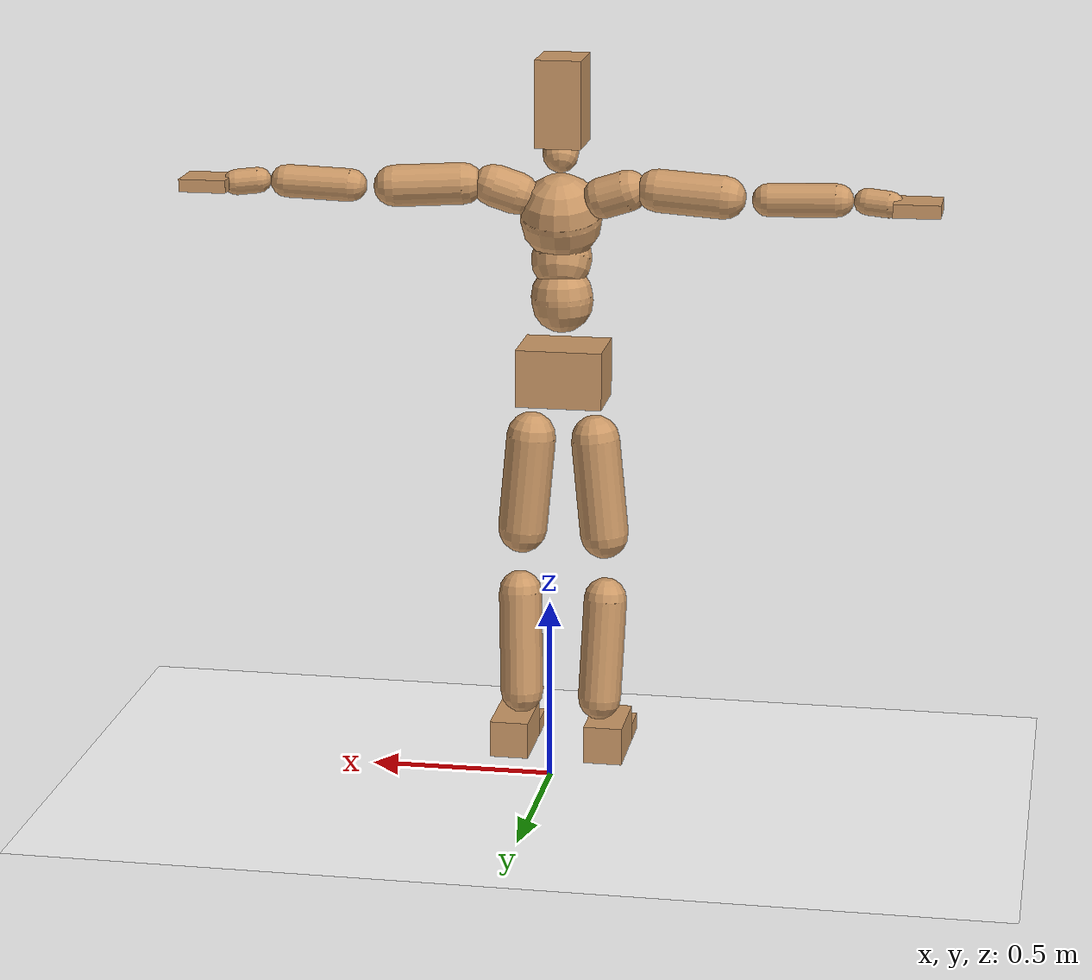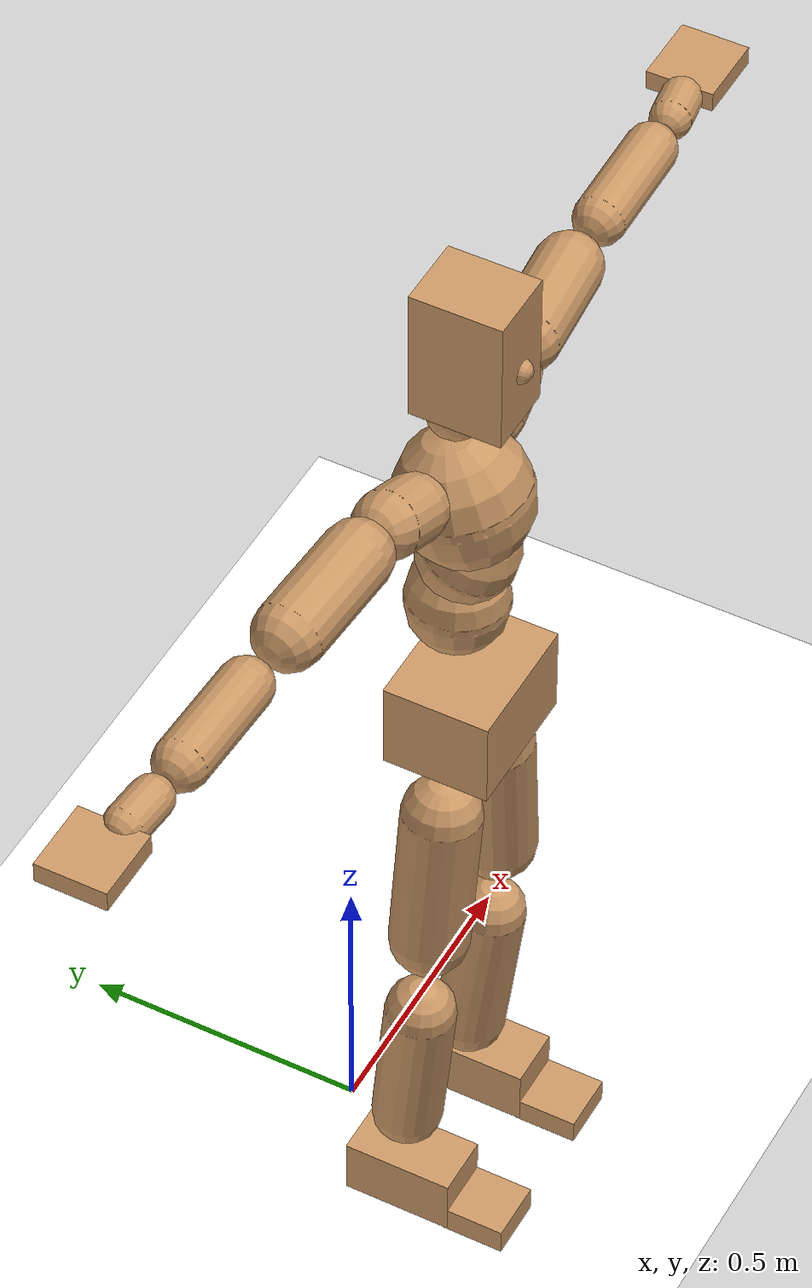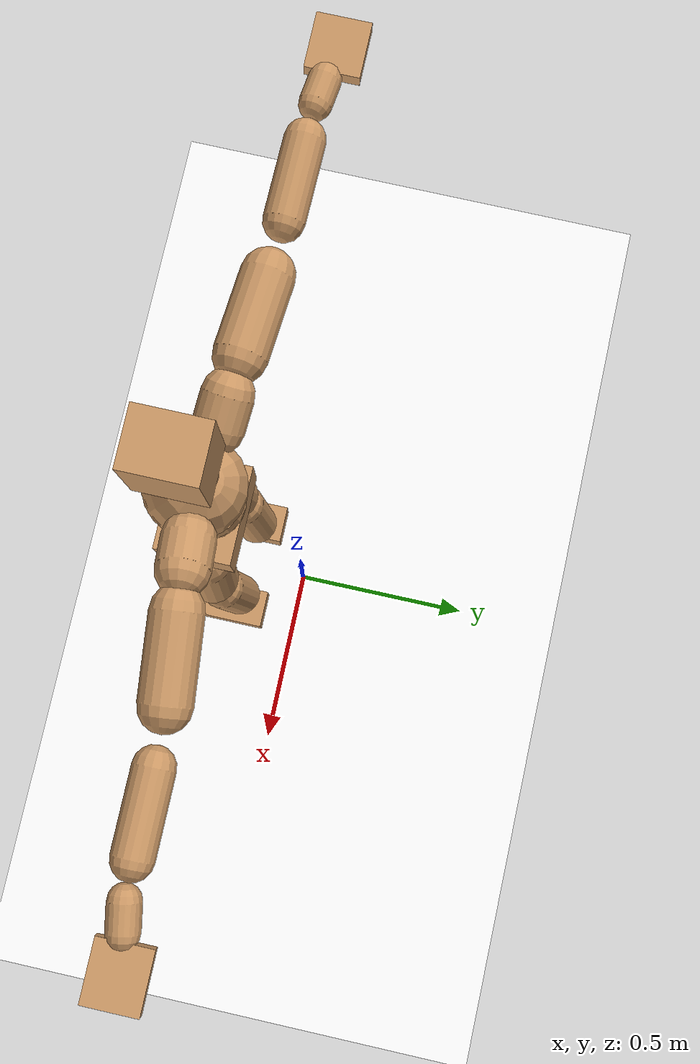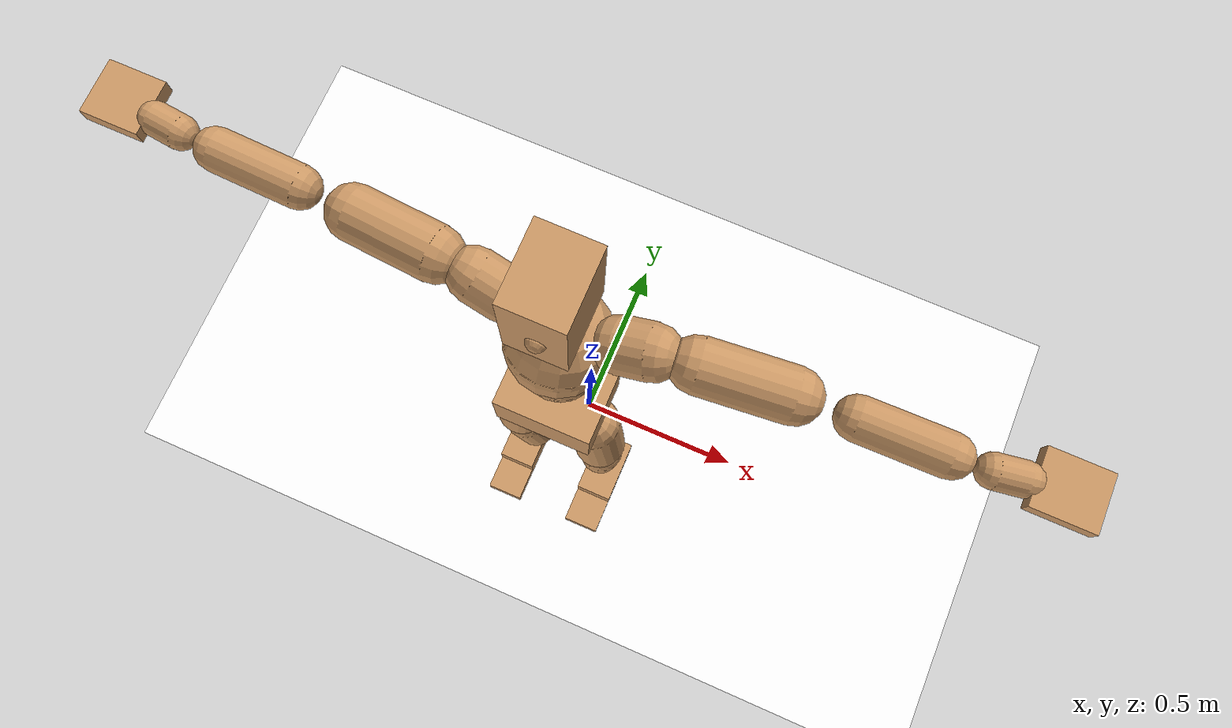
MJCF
<mujoco model="humanoid">
  <option integrator="implicitfast" />

  <visual>
    <global offwidth="1280" offheight="960" />
    <headlight active="1" ambient="0.34 0.34 0.34" diffuse="0.5 0.5 0.5" />
  </visual>

  <default>
    <joint damping="2" stiffness="2" armature="0.01" limited="true" solimplimit="0 .99 .01" />
    <geom condim="1" friction="0.7 0.005 0.0001" solimp=".99 .99 .003" solref="0.015 1" margin="0.001" rgba="0.8 0.6 .4 1" />
    <default class="smplcontact">
      <geom condim="3" friction="1. 0.005 0.0001" solref="0.015 1" solimp="0.98 0.98 0.001" priority="1" />
    </default>
    <default class="stiff_medium">
      <joint stiffness="10" />
    </default>
    <default class="stiff_medium_higher">
      <joint stiffness="50" />
    </default>
    <default class="stiff_high">
      <joint stiffness="100" />
    </default>
  </default>

  <asset>
    <texture type="skybox" builtin="gradient" rgb1="0.99 0.99 0.99" rgb2="0.608 0.828 0.892" width="100" />
    <texture builtin="flat" height="1278" mark="cross" markrgb="1 1 1" name="texgeom" random="0.01" rgb1="0.8 0.6 0.4" rgb2="0.8 0.6 0.4" type="cube" width="127" />
    <texture name="texplane" type="2d" builtin="checker" markrgb="1 1 1" rgb1="0.756 0.772 0.76" rgb2="0.6 0.6 0.6" width="100" height="100" />
    <material name="MatPlane" reflectance="0.5" texture="texplane" texrepeat="1 1" texuniform="true" />
    <material name="geom" texture="texgeom" texuniform="true" />
  </asset>

  <worldbody>
    <light name="tracking_light" pos="0 0 7" dir="0 0 -1" directional="true" cutoff="100" exponent="1" diffuse="1 1 1" specular="0.1 0.1 0.1" mode="trackcom" />
    <camera name="back" pos="0 3 2.4" xyaxes="-1 0 0 0 -1 2" mode="trackcom" />
    <camera name="side" pos="-3 0 2.4" xyaxes="0 -1 0 1 0 2" mode="trackcom" />
    <camera name="front_side" pos="-2.8 -2.8 0.8" xyaxes="0.5 -0.5 0 0.1 0.1 1" mode="trackcom" />
    <geom condim="3" name="floor" pos="0 0 0" rgba="1 1 1 1" size="100 100 .2" type="plane" material="MatPlane" />
    <body name="Pelvis" pos="-0.0018 -0.2233 1.11071" euler="90 0 0">
      <site name="Pelvis" size="0.01" />
      <freejoint name="Pelvis" />
      <geom type="box" pos="-0.0000 -0.0121 -0.0055" size="0.118926 0.0803225 0.0923375" quat="1.0000 0.0000 0.0000 0.0000" density="3165.830099" name="Pelvis" />
      <body name="L_Hip" pos="0.0825313 -0.108537 -0.008075">
        <joint name="L_Hip_x" type="hinge" pos="0 0 0" axis="1 0 0" stiffness="17.0882533" range="-160.0 22.92" class="stiff_medium" damping="27.80613462123831" armature="0.020109489743900477"/>
        <joint name="L_Hip_y" type="hinge" pos="0 0 0" axis="0 1 0" stiffness="17.0596952" range="-70.0 70.0" class="stiff_medium" damping="17.862031671401386" armature="0.018702102920932974"/>
        <joint name="L_Hip_z" type="hinge" pos="0 0 0" axis="0 0 1" stiffness="17.0654189" range="-28.65 90.0" class="stiff_medium" damping="18.525987928384463" armature="0.020111561909719473"/>
        <geom type="capsule" density="2040.816327" fromto="0.00819375 -0.0890625 -0.00106875 0.0325375 -0.356488 -0.004275" size="0.0684188" name="L_Hip" />
        <body name="L_Knee" pos="0.0407312 -0.44555 -0.00534375">
          <joint name="L_Knee_x" type="hinge" pos="0 0 0" axis="1 0 0" range="-5.16 171.89" damping="14.68270503020896" armature="0.01985412904379994" stiffness="3.39321462"/>
          <joint name="L_Knee_y" type="hinge" pos="0 0 0" axis="0 1 0" range="-4.58 6.88" damping="14.19086391436489" armature="0.018464756662140723" stiffness="3.4081924"/>
          <joint name="L_Knee_z" type="hinge" pos="0 0 0" axis="0 0 1" range="-6.88 4.58" damping="14.66592443317777" armature="0.019864030160216074" stiffness="3.3837754999999996"/>
          <geom type="capsule" density="1234.567901" fromto="-0.00320625 -0.094525 -0.0103313 -0.0129438 -0.3781 -0.0415625" size="0.0601863" name="L_Knee" />
          <body name="L_Ankle" pos="-0.01615 -0.472625 -0.0518938">
            <joint name="L_Ankle_x" type="hinge" pos="0 0 0" axis="1 0 0" range="-45.84 45.84" class="stiff_medium" damping="10.464413212248028" armature="0.0186034296471474" stiffness="16.350620699999997"/>
            <joint name="L_Ankle_y" type="hinge" pos="0 0 0" axis="0 1 0" range="-74.48 22.92" class="stiff_medium" damping="5.2240279757928" armature="0.01854531677206781" stiffness="16.3506199"/>
            <joint name="L_Ankle_z" type="hinge" pos="0 0 0" axis="0 0 1" range="-4.58 4.58" class="stiff_medium" damping="10.340321768177825" armature="0.01816483345015905" stiffness="16.3506185"/>
            <geom type="box" pos="0.0276688 -0.0283813 0.0287375" size="0.0537338 0.05162 0.0945625" quat="1.0000 0.0000 0.0000 0.0000" density="449.071558" name="L_Ankle" class="smplcontact" />
            <body name="L_Toe" pos="0.03135 -0.0662625 0.141669">
              <joint name="L_Toe_x" type="hinge" pos="0 0 0" axis="1 0 0" range="-91.67 22.92" armature="0.01794420066601731" damping="3.425777078435621" stiffness="3.27012298"/>
              <joint name="L_Toe_y" type="hinge" pos="0 0 0" axis="0 1 0" range="-4.58 4.58" armature="0.017677441895990183" damping="3.4002177583798523" stiffness="3.2701227"/>
              <joint name="L_Toe_z" type="hinge" pos="0 0 0" axis="0 0 1" range="-4.58 4.58" armature="0.017138064733469786" damping="3.347940508617625" stiffness="3.2701199999999995"/>
              <geom type="box" pos="-0.0035625 0.00653125 0.02945" size="0.0531775 0.02225 0.05518" quat="1.0000 0.0000 0.0000 0.0000" density="423.206892" name="L_Toe" class="smplcontact" />
            </body>
          </body>
        </body>
      </body>
      <body name="R_Hip" pos="-0.0803937 -0.107469 -0.00510625">
        <joint name="R_Hip_x" type="hinge" pos="0 0 0" axis="1 0 0" stiffness="17.0882533" range="-160.0 22.92" class="stiff_medium" damping="27.80613462123831" armature="0.020109489743900477"/>
        <joint name="R_Hip_y" type="hinge" pos="0 0 0" axis="0 1 0" stiffness="17.0596952" range="-70.0 70.0" class="stiff_medium" damping="17.862031671401386" armature="0.018702102920932974"/>
        <joint name="R_Hip_z" type="hinge" pos="0 0 0" axis="0 0 1" stiffness="17.0654189" range="-90.0 28.65" class="stiff_medium" damping="18.525987928384463" armature="0.020111561909719473"/>
        <geom type="capsule" density="2040.816327" fromto="-0.00914375 -0.0908438 -0.0021375 -0.0363375 -0.363494 -0.00843125" size="0.0674175" name="R_Hip" />
        <body name="R_Knee" pos="-0.0454813 -0.454338 -0.0105688">
          <joint name="R_Knee_x" type="hinge" pos="0 0 0" axis="1 0 0" range="-5.16 171.89" damping="14.68270503020896" armature="0.01985412904379994" stiffness="3.39321462"/>
          <joint name="R_Knee_y" type="hinge" pos="0 0 0" axis="0 1 0" range="-6.88 4.58" damping="14.19086391436489" armature="0.018464756662140723" stiffness="3.4081924"/>
          <joint name="R_Knee_z" type="hinge" pos="0 0 0" axis="0 0 1" range="-4.58 6.88" damping="14.66592443317777" armature="0.019864030160216074" stiffness="3.3837754999999996"/>
          <geom type="capsule" density="1234.567901" fromto="0.0038 -0.0946437 -0.0100938 0.0149625 -0.378456 -0.0401375" size="0.0601863" name="R_Knee" />
          <body name="R_Ankle" pos="0.0187625 -0.4731 -0.0502312">
            <joint name="R_Ankle_x" type="hinge" pos="0 0 0" axis="1 0 0" range="-45.84 45.84" class="stiff_medium" damping="10.464413212248028" armature="0.0186034296471474" stiffness="16.350620699999997"/>
            <joint name="R_Ankle_y" type="hinge" pos="0 0 0" axis="0 1 0" range="-22.92 74.48" class="stiff_medium" damping="5.2240279757928" armature="0.01854531677206781" stiffness="16.3506199"/>
            <joint name="R_Ankle_z" type="hinge" pos="0 0 0" axis="0 0 1" range="-4.58 4.58" class="stiff_medium" damping="10.340321768177825" armature="0.01816483345015905" stiffness="16.3506185"/>
            <geom type="box" pos="-0.025175 -0.0206625 0.0304" size="0.0537338 0.0531775 0.0962312" quat="1.0000 0.0000 0.0000 0.0000" density="434.700981" name="R_Ankle" class="smplcontact" />
            <body name="R_Toe" pos="-0.0301625 -0.0571187 0.146419">
              <joint name="R_Toe_x" type="hinge" pos="0 0 0" axis="1 0 0" range="-91.67 22.92" armature="0.01794420066601731" damping="3.425777078435621" stiffness="3.27012298"/>
              <joint name="R_Toe_y" type="hinge" pos="0 0 0" axis="0 1 0" range="-4.58 4.58" armature="0.017677441895990183" damping="3.4002177583798523" stiffness="3.2701227"/>
              <joint name="R_Toe_z" type="hinge" pos="0 0 0" axis="0 0 1" range="-4.58 4.58" armature="0.017138064733469786" damping="3.347940508617625" stiffness="3.2701199999999995"/>
              <geom type="box" pos="0.0049875 0.00534375 0.0269563" size="0.0532888 0.02403 0.0548462" quat="1.0000 0.0000 0.0000 0.0000" density="407.384095" name="R_Toe" class="smplcontact" />
            </body>
          </body>
        </body>
      </body>
      <body name="Torso" pos="-0.002875 0.12535 -0.030705">
        <joint name="Torso_x" type="hinge" pos="0 0 0" axis="1 0 0" range="-25.78 57.3" class="stiff_medium" damping="24.052628862811538" armature="0.016871648251729474" stiffness="15.240003600000001"/>
        <joint name="Torso_y" type="hinge" pos="0 0 0" axis="0 1 0" range="-57.3 57.3" class="stiff_high" damping="34.62991253651796" armature="0.019974250174188635" stiffness="150.097104"/>
        <joint name="Torso_z" type="hinge" pos="0 0 0" axis="0 0 1" range="-34.38 34.38" class="stiff_high" damping="33.06046014020086" armature="0.017941818037811152" stiffness="152.297"/>
        <geom type="capsule" density="2040.816327" fromto="0.002875 0.06992 0.000575 0.00345 0.085445 0.00069" size="0.0855512" name="Torso" />
        <body name="Spine" pos="0.006325 0.15548 0.001265">
          <joint name="Spine_x" type="hinge" pos="0 0 0" axis="1 0 0" stiffness="15.0376226" range="-25.78 57.3" class="stiff_medium" damping="23.345304866011364" armature="0.016107843456200883"/>
          <joint name="Spine_y" type="hinge" pos="0 0 0" axis="0 1 0" stiffness="15.000012199999997" range="-57.3 57.3" class="stiff_high" damping="13.854498136257755" armature="0.019994475259448627"/>
          <joint name="Spine_z" type="hinge" pos="0 0 0" axis="0 0 1" stiffness="29.85888" range="-34.38 34.38" class="stiff_high" damping="19.812467228302012" armature="0.018258752955036657"/>
          <geom type="capsule" density="2040.816327" fromto="0.000805 0.02737 0.01311 0.00092 0.033465 0.0161" size="0.0839938" name="Spine" />
          <body name="Chest" pos="0.001725 0.060835 0.02921">
            <joint name="Chest_x" type="hinge" pos="0 0 0" axis="1 0 0" stiffness="14.82011520833333" range="-25.78 57.3" class="stiff_medium" damping="22.88701967296499" armature="0.01570884982702865"/>
            <joint name="Chest_y" type="hinge" pos="0 0 0" axis="0 1 0" stiffness="15.830081914893624" range="-57.3 57.3" class="stiff_high" damping="14.240951354099886" armature="0.020017731959648767"/>
            <joint name="Chest_z" type="hinge" pos="0 0 0" axis="0 0 1" stiffness="29.420226399999994" range="-34.38 34.38" class="stiff_high" damping="19.779066449086983" armature="0.01846856159236491"/>
            <geom type="capsule" density="2040.816327" fromto="-0.001035 0.07843 -0.019895 -0.00115 0.095795 -0.02438" size="0.111473" name="Chest" />
            <body name="Neck" pos="-0.00322 0.245985 -0.049335">
              <joint name="Neck_x" type="hinge" pos="0 0 0" axis="1 0 0" range="-28.65 57.3" class="stiff_medium_higher" damping="12.014713786515447" armature="0.012112853309043553" stiffness="59.586847"/>
              <joint name="Neck_y" type="hinge" pos="0 0 0" axis="0 1 0" range="-40.11 40.11" class="stiff_medium_higher" damping="12.089392126699622" armature="0.012329900225134329" stiffness="59.267877"/>
              <joint name="Neck_z" type="hinge" pos="0 0 0" axis="0 0 1" range="-40.11 40.11" class="stiff_medium_higher" damping="11.916681863902024" armature="0.0120913066909807" stiffness="58.72289500000001"/>
              <geom type="capsule" density="1000" fromto="0.00115 0.01495 0.011845 0.004715 0.0598 0.047265" size="0.048505" name="Neck" />
              <body name="Head" pos="0.005395 0.0674375 0.0532238">
                <joint name="Head_x" type="hinge" pos="0 0 0" axis="1 0 0" range="-28.65 57.3" class="stiff_medium_higher" damping="2.3603630318818727" armature="0.012021079705077412" stiffness="57.93275"/>
                <joint name="Head_y" type="hinge" pos="0 0 0" axis="0 1 0" range="-40.11 40.11" class="stiff_medium_higher" damping="2.3603599444846073" armature="0.012021048257521393" stiffness="57.93275"/>
                <joint name="Head_z" type="hinge" pos="0 0 0" axis="0 0 1" range="-40.11 40.11" class="stiff_medium_higher" damping="2.3603632210231313" armature="0.012021081631630409" stiffness="57.93275"/>
                <geom type="box" pos="-0.0043575 0.090885 -0.012035" size="0.0628725 0.119728 0.07885" quat="1.0000 0.0000 0.0000 0.0000" density="1018.069894" name="Head" />
                <geom type="capsule" name="nose" size="0.02075 0.010375" pos="0 0.072625 0.051875" quat="1 0 0 0" mass="0" contype="0" conaffinity="0" />
              </body>
            </body>
            <body name="L_Thorax" pos="0.093575 0.144519 -0.0404937">
              <joint name="L_Thorax_x" type="hinge" pos="0 0 0" axis="1 0 0" range="-10.89 4.58" class="stiff_medium_higher" damping="36.045852889000486" armature="0.019080452641088538" stiffness="85.12006600000002"/>
              <joint name="L_Thorax_y" type="hinge" pos="0 0 0" axis="0 1 0" range="-28.65 17.19" class="stiff_medium_higher" damping="37.052104611701886" armature="0.020129011265721145" stiffness="85.253719"/>
              <joint name="L_Thorax_z" type="hinge" pos="0 0 0" axis="0 0 1" range="-31.51 40.11" class="stiff_medium_higher" damping="37.05242907466187" armature="0.02012996082929846" stiffness="85.2511905"/>
              <geom type="capsule" density="1000" fromto="0.0216125 0.00724375 -0.0021375 0.08645 0.028975 -0.00843125" size="0.0579613" name="L_Thorax" />
              <body name="L_Shoulder" pos="0.108062 0.0362188 -0.0105688">
                <joint name="L_Shoulder_x" type="hinge" pos="0 0 0" axis="1 0 0" range="-97.4 97.4" class="stiff_medium" damping="10.690306734281041" armature="0.018662144571853074" stiffness="17.010468799999998"/>
                <joint name="L_Shoulder_y" type="hinge" pos="0 0 0" axis="0 1 0" range="-108.86 80.21" class="stiff_medium" damping="11.100414062295346" armature="0.02008886983547757" stiffness="17.0380682"/>
                <joint name="L_Shoulder_z" type="hinge" pos="0 0 0" axis="0 0 1" range="-97.4 85.94" class="stiff_medium" damping="11.10101420576531" armature="0.020090072151065144" stiffness="17.038890799999997"/>
                <geom type="capsule" density="1000" fromto="0.0616312 -0.0030875 -0.00653125 0.246644 -0.0121125 -0.026125" size="0.0575163" name="L_Shoulder" />
                <body name="L_Elbow" pos="0.308275 -0.0152 -0.0326562">
                  <joint name="L_Elbow_x" type="hinge" pos="0 0 0" axis="1 0 0" range="-17.19 4.58" damping="8.72861665864912" armature="0.0180074395472443" stiffness="3.3847676599999996"/>
                  <joint name="L_Elbow_y" type="hinge" pos="0 0 0" axis="0 1 0" range="-180.0 17.19" damping="9.17447614944707" armature="0.019893822723703408" stiffness="3.38481"/>
                  <joint name="L_Elbow_z" type="hinge" pos="0 0 0" axis="0 0 1" range="-100.84 4.58" damping="9.175116031221812" armature="0.01990012715497707" stiffness="3.3842097"/>
                  <geom type="capsule" density="1000" fromto="0.0591375 0.0021375 -0.0002375 0.236787 0.00855 -0.00106875" size="0.0450563" name="L_Elbow" />
                  <body name="L_Wrist" pos="0.295925 0.0106875 -0.001425">
                    <joint name="L_Wrist_x" type="hinge" pos="0 0 0" axis="1 0 0" range="-180.0 22.92" armature="0.017843824558617473" damping="3.4369491343648195" stiffness="3.3100021"/>
                    <joint name="L_Wrist_y" type="hinge" pos="0 0 0" axis="0 1 0" range="-17.19 17.19" armature="0.01925654991194137" damping="3.5735214722303517" stiffness="3.31576938"/>
                    <joint name="L_Wrist_z" type="hinge" pos="0 0 0" axis="0 0 1" range="-22.92 22.92" armature="0.01933468015682933" damping="3.5797600269626577" stiffness="3.313911"/>
                    <geom type="capsule" density="1000" fromto="0.01995 -0.0019 -0.0035625 0.0798 -0.00771875 -0.01425" size="0.0353775" name="L_Wrist" class="smplcontact" />
                    <body name="L_Hand" pos="0.09975 -0.0097375 -0.0176938">
                      <joint name="L_Hand_x" type="hinge" pos="0 0 0" axis="1 0 0" range="-17.19 17.19" armature="0.017144686123493007" damping="3.34858774716799" stiffness="3.27012108"/>
                      <joint name="L_Hand_y" type="hinge" pos="0 0 0" axis="0 1 0" range="-51.57 51.57" armature="0.018292605191202235" damping="3.458873553135562" stiffness="3.2701209399999995"/>
                      <joint name="L_Hand_z" type="hinge" pos="0 0 0" axis="0 0 1" range="-91.67 91.67" armature="0.018598598881865193" damping="3.4876831500055703" stiffness="3.2701209999999996"/>
                      <geom type="box" pos="0.0585437 0.0011875 -0.0068875" size="0.0650813 0.0175775 0.0598525" quat="1.0000 0.0000 0.0000 0.0000" density="400.552564" name="L_Hand" class="smplcontact" />
                    </body>
                  </body>
                </body>
              </body>
            </body>
            <body name="R_Thorax" pos="-0.0971375 0.141075 -0.0458375">
              <joint name="R_Thorax_x" type="hinge" pos="0 0 0" axis="1 0 0" range="-10.89 4.58" class="stiff_medium_higher" damping="36.045852889000486" armature="0.019080452641088538" stiffness="85.12006600000002"/>
              <joint name="R_Thorax_y" type="hinge" pos="0 0 0" axis="0 1 0" range="-17.19 28.65" class="stiff_medium_higher" damping="37.052104611701886" armature="0.020129011265721145" stiffness="85.253719"/>
              <joint name="R_Thorax_z" type="hinge" pos="0 0 0" axis="0 0 1" range="-40.11 31.51" class="stiff_medium_higher" damping="37.05242907466187" armature="0.02012996082929846" stiffness="85.2511905"/>
              <geom type="capsule" density="1000" fromto="-0.0228 0.00771875 -0.0021375 -0.0912 0.030875 -0.00866875" size="0.0568488" name="R_Thorax" />
              <body name="R_Shoulder" pos="-0.114 0.0387125 -0.0108062">
                <joint name="R_Shoulder_x" type="hinge" pos="0 0 0" axis="1 0 0" range="-97.4 97.4" class="stiff_medium" damping="10.690306734281041" armature="0.018662144571853074" stiffness="17.010468799999998"/>
                <joint name="R_Shoulder_y" type="hinge" pos="0 0 0" axis="0 1 0" range="-80.21 108.86" class="stiff_medium" damping="11.100414062295346" armature="0.02008886983547757" stiffness="17.0380682"/>
                <joint name="R_Shoulder_z" type="hinge" pos="0 0 0" axis="0 0 1" range="-85.94 97.4" class="stiff_medium" damping="11.10101420576531" armature="0.020090072151065144" stiffness="17.038890799999997"/>
                <geom type="capsule" density="1000" fromto="-0.0602063 -0.00320625 -0.00510625 -0.241063 -0.0127062 -0.0203063" size="0.0590738" name="R_Shoulder" />
                <body name="R_Elbow" pos="-0.301269 -0.0157937 -0.0254125">
                  <joint name="R_Elbow_x" type="hinge" pos="0 0 0" axis="1 0 0" range="-17.19 4.58" damping="8.72861665864912" armature="0.0180074395472443" stiffness="3.3847676599999996"/>
                  <joint name="R_Elbow_y" type="hinge" pos="0 0 0" axis="0 1 0" range="-17.19 180.0" damping="9.17447614944707" armature="0.019893822723703408" stiffness="3.38481"/>
                  <joint name="R_Elbow_z" type="hinge" pos="0 0 0" axis="0 0 1" range="-4.58 100.84" damping="9.175116031221812" armature="0.01990012715497707" stiffness="3.3842097"/>
                  <geom type="capsule" density="1000" fromto="-0.0606812 0.0019 -0.00130625 -0.242487 0.0073625 -0.005225" size="0.04539" name="R_Elbow" />
                  <body name="R_Wrist" pos="-0.303169 0.0092625 -0.00665">
                    <joint name="R_Wrist_x" type="hinge" pos="0 0 0" axis="1 0 0" range="-180.0 22.92" armature="0.017843824558617473" damping="3.4369491343648195" stiffness="3.3100021"/>
                    <joint name="R_Wrist_y" type="hinge" pos="0 0 0" axis="0 1 0" range="-17.19 17.19" armature="0.01925654991194137" damping="3.5735214722303517" stiffness="3.31576938"/>
                    <joint name="R_Wrist_z" type="hinge" pos="0 0 0" axis="0 0 1" range="-22.92 22.92" armature="0.01933468015682933" damping="3.5797600269626577" stiffness="3.313911"/>
                    <geom type="capsule" density="1000" fromto="-0.0200687 -0.001425 -0.00249375 -0.0803937 -0.00581875 -0.00985625" size="0.0362675" name="R_Wrist" class="smplcontact" />
                    <body name="R_Hand" pos="-0.100462 -0.00724375 -0.0122313">
                      <joint name="R_Hand_x" type="hinge" pos="0 0 0" axis="1 0 0" range="-17.19 17.19" armature="0.017144686123493007" damping="3.34858774716799" stiffness="3.27012108"/>
                      <joint name="R_Hand_y" type="hinge" pos="0 0 0" axis="0 1 0" range="-51.57 51.57" armature="0.018292605191202235" damping="3.458873553135562" stiffness="3.2701209399999995"/>
                      <joint name="R_Hand_z" type="hinge" pos="0 0 0" axis="0 0 1" range="-91.67 91.67" armature="0.018598598881865193" damping="3.4876831500055703" stiffness="3.2701209999999996"/>
                      <geom type="box" pos="-0.0548625 -0.00106875 -0.00938125" size="0.0633013 0.018245 0.0607425" quat="1.0000 0.0000 0.0000 0.0000" density="403.679611" name="R_Hand" class="smplcontact" />
                    </body>
                  </body>
                </body>
              </body>
            </body>
          </body>
        </body>
      </body>
    </body>
  </worldbody>
  <actuator>
    <general name="L_Hip_x" joint="L_Hip_x" biastype="affine" gainprm="490.9968916000283" biasprm="-367.95240487935644 -307.58855940000007 -3.7074846161651083" ctrllimited="true" ctrlrange="-1 1" forcerange="-615.1771188000001 615.1771188000001" />
    <general name="L_Hip_y" joint="L_Hip_y" biastype="affine" gainprm="375.16229178960737" biasprm="0.0 -307.0745136 -3.572406334280277" ctrllimited="true" ctrlrange="-1 1" forcerange="-614.1490272 614.1490272" />
    <general name="L_Hip_z" joint="L_Hip_z" biastype="affine" gainprm="318.0567177413841" biasprm="164.4566340786676 -307.1775402 -3.7051975856768924" ctrllimited="true" ctrlrange="-1 1" forcerange="-614.3550804 614.3550804" />
    <general name="L_Knee_x" joint="L_Knee_x" biastype="affine" gainprm="471.8425931358907" biasprm="444.3395399804973 -305.3893158 -3.67067625755224" ctrllimited="true" ctrlrange="-1 1" forcerange="-610.7786316 610.7786316" />
    <general name="L_Knee_y" joint="L_Knee_y" biastype="affine" gainprm="30.67599106979052" biasprm="6.156612518369825 -306.73731599999996 -3.5477159785912225" ctrllimited="true" ctrlrange="-1 1" forcerange="-613.4746319999999 613.4746319999999" />
    <general name="L_Knee_z" joint="L_Knee_z" biastype="affine" gainprm="30.45622278254477" biasprm="-6.1125054450133485 -304.53979499999997 -3.6664811082944424" ctrllimited="true" ctrlrange="-1 1" forcerange="-609.0795899999999 609.0795899999999" />
    <general name="L_Ankle_x" joint="L_Ankle_x" biastype="affine" gainprm="117.73314078835033" biasprm="0.0 -147.15558629999995 -3.488137737416009" ctrllimited="true" ctrlrange="-1 1" forcerange="-294.3111725999999 294.3111725999999" />
    <general name="L_Ankle_y" joint="L_Ankle_y" biastype="affine" gainprm="125.07861422033159" biasprm="-66.21204670636854 -147.1555791 -3.4826853171952" ctrllimited="true" ctrlrange="-1 1" forcerange="-294.3111582 294.3111582" />
    <general name="L_Ankle_z" joint="L_Ankle_z" biastype="affine" gainprm="11.763039098126104" biasprm="0.0 -147.1555665 -3.4467739227259417" ctrllimited="true" ctrlrange="-1 1" forcerange="-294.311133 294.311133" />
    <general name="L_Toe_x" joint="L_Toe_x" biastype="affine" gainprm="117.72282563094393" biasprm="-70.62958602083422 -117.72442728 -1.3703108313742485" ctrllimited="true" ctrlrange="-1 1" forcerange="-235.44885456 235.44885456" />
    <general name="L_Toe_y" joint="L_Toe_y" biastype="affine" gainprm="9.410428400802012" biasprm="0.0 -117.7244172 -1.360087103351941" ctrllimited="true" ctrlrange="-1 1" forcerange="-235.4488344 235.4488344" />
    <general name="L_Toe_z" joint="L_Toe_z" biastype="affine" gainprm="9.41042063101506" biasprm="0.0 -117.72431999999998 -1.33917620344705" ctrllimited="true" ctrlrange="-1 1" forcerange="-235.44863999999995 235.44863999999995" />
    <general name="R_Hip_x" joint="R_Hip_x" biastype="affine" gainprm="490.9968916000283" biasprm="-367.95240487935644 -307.58855940000007 -3.7074846161651083" ctrllimited="true" ctrlrange="-1 1" forcerange="-615.1771188000001 615.1771188000001" />
    <general name="R_Hip_y" joint="R_Hip_y" biastype="affine" gainprm="375.16229178960737" biasprm="0.0 -307.0745136 -3.572406334280277" ctrllimited="true" ctrlrange="-1 1" forcerange="-614.1490272 614.1490272" />
    <general name="R_Hip_z" joint="R_Hip_z" biastype="affine" gainprm="318.0567177413841" biasprm="-164.4566340786676 -307.1775402 -3.7051975856768924" ctrllimited="true" ctrlrange="-1 1" forcerange="-614.3550804 614.3550804" />
    <general name="R_Knee_x" joint="R_Knee_x" biastype="affine" gainprm="471.8425931358907" biasprm="444.3395399804973 -305.3893158 -3.67067625755224" ctrllimited="true" ctrlrange="-1 1" forcerange="-610.7786316 610.7786316" />
    <general name="R_Knee_y" joint="R_Knee_y" biastype="affine" gainprm="30.67599106979052" biasprm="-6.156612518369825 -306.73731599999996 -3.5477159785912225" ctrllimited="true" ctrlrange="-1 1" forcerange="-613.4746319999999 613.4746319999999" />
    <general name="R_Knee_z" joint="R_Knee_z" biastype="affine" gainprm="30.45622278254477" biasprm="6.1125054450133485 -304.53979499999997 -3.6664811082944424" ctrllimited="true" ctrlrange="-1 1" forcerange="-609.0795899999999 609.0795899999999" />
    <general name="R_Ankle_x" joint="R_Ankle_x" biastype="affine" gainprm="117.73314078835033" biasprm="0.0 -147.15558629999995 -3.488137737416009" ctrllimited="true" ctrlrange="-1 1" forcerange="-294.3111725999999 294.3111725999999" />
    <general name="R_Ankle_y" joint="R_Ankle_y" biastype="affine" gainprm="125.07861422033159" biasprm="66.21204670636854 -147.1555791 -3.4826853171952" ctrllimited="true" ctrlrange="-1 1" forcerange="-294.3111582 294.3111582" />
    <general name="R_Ankle_z" joint="R_Ankle_z" biastype="affine" gainprm="11.763039098126104" biasprm="0.0 -147.1555665 -3.4467739227259417" ctrllimited="true" ctrlrange="-1 1" forcerange="-294.311133 294.311133" />
    <general name="R_Toe_x" joint="R_Toe_x" biastype="affine" gainprm="117.72282563094393" biasprm="-70.62958602083422 -117.72442728 -1.3703108313742485" ctrllimited="true" ctrlrange="-1 1" forcerange="-235.44885456 235.44885456" />
    <general name="R_Toe_y" joint="R_Toe_y" biastype="affine" gainprm="9.410428400802012" biasprm="0.0 -117.7244172 -1.360087103351941" ctrllimited="true" ctrlrange="-1 1" forcerange="-235.4488344 235.4488344" />
    <general name="R_Toe_z" joint="R_Toe_z" biastype="affine" gainprm="9.41042063101506" biasprm="0.0 -117.72431999999998 -1.33917620344705" ctrllimited="true" ctrlrange="-1 1" forcerange="-235.44863999999995 235.44863999999995" />
    <general name="Torso_x" joint="Torso_x" biastype="affine" gainprm="265.1796365836481" biasprm="100.60739221372877 -365.76008640000003 -6.41403436341641" ctrllimited="true" ctrlrange="-1 1" forcerange="-548.6401296 548.6401296" />
    <general name="Torso_y" joint="Torso_y" biastype="affine" gainprm="360.2595848681484" biasprm="0.0 -360.2330496 -6.925982507303592" ctrllimited="true" ctrlrange="-1 1" forcerange="-540.3495744 540.3495744" />
    <general name="Torso_z" joint="Torso_z" biastype="affine" gainprm="219.32383450914978" biasprm="0.0 -365.51279999999997 -6.612092028040172" ctrllimited="true" ctrlrange="-1 1" forcerange="-548.2692 548.2692" />
    <general name="Spine_x" joint="Spine_x" biastype="affine" gainprm="261.65815972314164" biasprm="99.2713672902434 -360.90294240000003 -6.225414630936364" ctrllimited="true" ctrlrange="-1 1" forcerange="-541.3544136 541.3544136" />
    <general name="Spine_y" joint="Spine_y" biastype="affine" gainprm="360.02681092295825" biasprm="0.0 -360.0002927999999 -6.927249068128877" ctrllimited="true" ctrlrange="-1 1" forcerange="-540.0004391999998 540.0004391999998" />
    <general name="Spine_z" joint="Spine_z" biastype="affine" gainprm="214.99977201614485" biasprm="0.0 -358.30656 -6.604155742767337" ctrllimited="true" ctrlrange="-1 1" forcerange="-537.45984 537.45984" />
    <general name="Chest_x" joint="Chest_x" biastype="affine" gainprm="257.8734801003347" biasprm="97.8354849875126 -355.68276499999996 -6.103205246123997" ctrllimited="true" ctrlrange="-1 1" forcerange="-533.5241474999999 533.5241474999999" />
    <general name="Chest_y" joint="Chest_y" biastype="affine" gainprm="379.949951538596" biasprm="0.0 -379.92196595744696 -7.120475677049943" ctrllimited="true" ctrlrange="-1 1" forcerange="-569.8829489361705 569.8829489361705" />
    <general name="Chest_z" joint="Chest_z" biastype="affine" gainprm="211.841233450932" biasprm="0.0 -353.04271679999994 -6.593022149695662" ctrllimited="true" ctrlrange="-1 1" forcerange="-529.5640751999999 529.5640751999999" />
    <general name="Neck_x" joint="Neck_x" biastype="affine" gainprm="32.17926757507541" biasprm="10.726422525025136 -42.90252984 -0.9611771029212358" ctrllimited="true" ctrlrange="-1 1" forcerange="-85.80505968 85.80505968" />
    <general name="Neck_y" joint="Neck_y" biastype="affine" gainprm="29.87321034820006" biasprm="0.0 -42.67287144 -0.9671513701359697" ctrllimited="true" ctrlrange="-1 1" forcerange="-85.34574288 85.34574288" />
    <general name="Neck_z" joint="Neck_z" biastype="affine" gainprm="29.59851918755696" biasprm="0.0 -42.280484400000006 -0.9533345491121619" ctrllimited="true" ctrlrange="-1 1" forcerange="-84.56096880000001 84.56096880000001" />
    <general name="Head_x" joint="Head_x" biastype="affine" gainprm="20.85732626653832" biasprm="6.952442088846106 -27.80772 -0.9441452127527491" ctrllimited="true" ctrlrange="-1 1" forcerange="-55.61544 55.61544" />
    <general name="Head_y" joint="Head_y" biastype="affine" gainprm="19.466837848769096" biasprm="0.0 -27.80772 -0.944143977793843" ctrllimited="true" ctrlrange="-1 1" forcerange="-55.61544 55.61544" />
    <general name="Head_z" joint="Head_z" biastype="affine" gainprm="19.466837848769096" biasprm="0.0 -27.80772 -0.9441452884092526" ctrllimited="true" ctrlrange="-1 1" forcerange="-55.61544 55.61544" />
    <general name="L_Thorax_x" joint="L_Thorax_x" biastype="affine" gainprm="27.579150133793025" biasprm="-11.249155613719074 -204.28815840000004 -2.8836682311200392" ctrllimited="true" ctrlrange="-1 1" forcerange="-408.5763168000001 408.5763168000001" />
    <general name="L_Thorax_y" joint="L_Thorax_y" biastype="affine" gainprm="81.84959895137158" biasprm="-20.462399737842894 -204.60892560000002 -2.964168368936151" ctrllimited="true" ctrlrange="-1 1" forcerange="-409.21785120000004 409.21785120000004" />
    <general name="L_Thorax_z" joint="L_Thorax_z" biastype="affine" gainprm="127.87727784834604" biasprm="15.355272123649481 -204.60285720000002 -2.9641943259729504" ctrllimited="true" ctrlrange="-1 1" forcerange="-409.20571440000003 409.20571440000003" />
    <general name="L_Shoulder_x" joint="L_Shoulder_x" biastype="affine" gainprm="138.80139935193927" biasprm="0.0 -81.65025023999999 -2.8507484624749444" ctrllimited="true" ctrlrange="-1 1" forcerange="-163.30050047999998 163.30050047999998" />
    <general name="L_Shoulder_y" joint="L_Shoulder_y" biastype="affine" gainprm="134.93716634420358" biasprm="-20.447187897400074 -81.78272736 -2.9601104166120926" ctrllimited="true" ctrlrange="-1 1" forcerange="-163.56545472 163.56545472" />
    <general name="L_Shoulder_z" joint="L_Shoulder_z" biastype="affine" gainprm="130.85404610894463" biasprm="-8.1792700360451 -81.78667583999999 -2.9602704548707495" ctrllimited="true" ctrlrange="-1 1" forcerange="-163.57335167999997 163.57335167999997" />
    <general name="L_Elbow_x" joint="L_Elbow_x" biastype="affine" gainprm="23.14926276454191" biasprm="-13.408920691817803 -121.85163576 -1.3965786653838592" ctrllimited="true" ctrlrange="-1 1" forcerange="-243.70327152 243.70327152" />
    <general name="L_Elbow_y" joint="L_Elbow_y" biastype="affine" gainprm="209.6858165173723" biasprm="-173.12717575532932 -121.85316 -1.4679161839115313" ctrllimited="true" ctrlrange="-1 1" forcerange="-243.70632 243.70632" />
    <general name="L_Elbow_z" joint="L_Elbow_z" biastype="affine" gainprm="112.08052343306937" biasprm="-102.34178700120717 -121.8315492 -1.4680185649954902" ctrllimited="true" ctrlrange="-1 1" forcerange="-243.6630984 243.6630984" />
    <general name="L_Wrist_x" joint="L_Wrist_x" biastype="affine" gainprm="35.168329945417995" biasprm="-27.223739738942733 -19.8600126 -1.3747796537459278" ctrllimited="true" ctrlrange="-1 1" forcerange="-39.7200252 39.7200252" />
    <general name="L_Wrist_y" joint="L_Wrist_y" biastype="affine" gainprm="5.968824523543029" biasprm="0.0 -19.89461628 -1.4294085888921408" ctrllimited="true" ctrlrange="-1 1" forcerange="-39.78923256 39.78923256" />
    <general name="L_Wrist_z" joint="L_Wrist_z" biastype="affine" gainprm="7.953972257519311" biasprm="0.0 -19.883466 -1.4319040107850631" ctrllimited="true" ctrlrange="-1 1" forcerange="-39.766932 39.766932" />
    <general name="L_Hand_x" joint="L_Hand_x" biastype="affine" gainprm="5.8866515310117915" biasprm="0.0 -19.620726480000002 -1.3394350988671961" ctrllimited="true" ctrlrange="-1 1" forcerange="-39.241452960000004 39.241452960000004" />
    <general name="L_Hand_y" joint="L_Hand_y" biastype="affine" gainprm="17.65995383697968" biasprm="0.0 -19.620725639999996 -1.3835494212542248" ctrllimited="true" ctrlrange="-1 1" forcerange="-39.24145127999999 39.24145127999999" />
    <general name="L_Hand_z" joint="L_Hand_z" biastype="affine" gainprm="31.392049601302986" biasprm="0.0 -19.620725999999998 -1.3950732600022282" ctrllimited="true" ctrlrange="-1 1" forcerange="-39.241451999999995 39.241451999999995" />
    <general name="R_Thorax_x" joint="R_Thorax_x" biastype="affine" gainprm="27.579150133793025" biasprm="-11.249155613719074 -204.28815840000004 -2.8836682311200392" ctrllimited="true" ctrlrange="-1 1" forcerange="-408.5763168000001 408.5763168000001" />
    <general name="R_Thorax_y" joint="R_Thorax_y" biastype="affine" gainprm="81.84959895137158" biasprm="20.462399737842883 -204.60892560000002 -2.964168368936151" ctrllimited="true" ctrlrange="-1 1" forcerange="-409.21785120000004 409.21785120000004" />
    <general name="R_Thorax_z" joint="R_Thorax_z" biastype="affine" gainprm="127.87727784834604" biasprm="-15.355272123649481 -204.60285720000002 -2.9641943259729504" ctrllimited="true" ctrlrange="-1 1" forcerange="-409.20571440000003 409.20571440000003" />
    <general name="R_Shoulder_x" joint="R_Shoulder_x" biastype="affine" gainprm="138.80139935193927" biasprm="0.0 -81.65025023999999 -2.8507484624749444" ctrllimited="true" ctrlrange="-1 1" forcerange="-163.30050047999998 163.30050047999998" />
    <general name="R_Shoulder_y" joint="R_Shoulder_y" biastype="affine" gainprm="134.93716634420358" biasprm="20.447187897400074 -81.78272736 -2.9601104166120926" ctrllimited="true" ctrlrange="-1 1" forcerange="-163.56545472 163.56545472" />
    <general name="R_Shoulder_z" joint="R_Shoulder_z" biastype="affine" gainprm="130.85404610894463" biasprm="8.179270036045082 -81.78667583999999 -2.9602704548707495" ctrllimited="true" ctrlrange="-1 1" forcerange="-163.57335167999997 163.57335167999997" />
    <general name="R_Elbow_x" joint="R_Elbow_x" biastype="affine" gainprm="23.14926276454191" biasprm="-13.408920691817803 -121.85163576 -1.3965786653838592" ctrllimited="true" ctrlrange="-1 1" forcerange="-243.70327152 243.70327152" />
    <general name="R_Elbow_y" joint="R_Elbow_y" biastype="affine" gainprm="209.6858165173723" biasprm="173.12717575532932 -121.85316 -1.4679161839115313" ctrllimited="true" ctrlrange="-1 1" forcerange="-243.70632 243.70632" />
    <general name="R_Elbow_z" joint="R_Elbow_z" biastype="affine" gainprm="112.08052343306937" biasprm="102.34178700120715 -121.8315492 -1.4680185649954902" ctrllimited="true" ctrlrange="-1 1" forcerange="-243.6630984 243.6630984" />
    <general name="R_Wrist_x" joint="R_Wrist_x" biastype="affine" gainprm="35.168329945417995" biasprm="-27.223739738942733 -19.8600126 -1.3747796537459278" ctrllimited="true" ctrlrange="-1 1" forcerange="-39.7200252 39.7200252" />
    <general name="R_Wrist_y" joint="R_Wrist_y" biastype="affine" gainprm="5.968824523543029" biasprm="0.0 -19.89461628 -1.4294085888921408" ctrllimited="true" ctrlrange="-1 1" forcerange="-39.78923256 39.78923256" />
    <general name="R_Wrist_z" joint="R_Wrist_z" biastype="affine" gainprm="7.953972257519311" biasprm="0.0 -19.883466 -1.4319040107850631" ctrllimited="true" ctrlrange="-1 1" forcerange="-39.766932 39.766932" />
    <general name="R_Hand_x" joint="R_Hand_x" biastype="affine" gainprm="5.8866515310117915" biasprm="0.0 -19.620726480000002 -1.3394350988671961" ctrllimited="true" ctrlrange="-1 1" forcerange="-39.241452960000004 39.241452960000004" />
    <general name="R_Hand_y" joint="R_Hand_y" biastype="affine" gainprm="17.65995383697968" biasprm="0.0 -19.620725639999996 -1.3835494212542248" ctrllimited="true" ctrlrange="-1 1" forcerange="-39.24145127999999 39.24145127999999" />
    <general name="R_Hand_z" joint="R_Hand_z" biastype="affine" gainprm="31.392049601302986" biasprm="0.0 -19.620725999999998 -1.3950732600022282" ctrllimited="true" ctrlrange="-1 1" forcerange="-39.241451999999995 39.241451999999995" />
  </actuator>
  <contact>
    <exclude body1="Torso" body2="Chest" />
    <exclude body1="Head" body2="Chest" />
    <exclude body1="R_Knee" body2="R_Toe" />
    <exclude body1="R_Knee" body2="L_Ankle" />
    <exclude body1="R_Knee" body2="L_Toe" />
    <exclude body1="L_Knee" body2="L_Toe" />
    <exclude body1="L_Knee" body2="R_Ankle" />
    <exclude body1="L_Knee" body2="R_Toe" />
    <exclude body1="L_Shoulder" body2="Chest" />
    <exclude body1="R_Shoulder" body2="Chest" />
  </contact>
  <sensor>
    <framelinvel name="sensor_Pelvis_framelinvel" objtype="xbody" objname="Pelvis" />
    <framelinvel name="sensor_L_Hip_framelinvel" objtype="xbody" objname="L_Hip" />
    <framelinvel name="sensor_L_Knee_framelinvel" objtype="xbody" objname="L_Knee" />
    <framelinvel name="sensor_L_Ankle_framelinvel" objtype="xbody" objname="L_Ankle" />
    <framelinvel name="sensor_L_Toe_framelinvel" objtype="xbody" objname="L_Toe" />
    <framelinvel name="sensor_R_Hip_framelinvel" objtype="xbody" objname="R_Hip" />
    <framelinvel name="sensor_R_Knee_framelinvel" objtype="xbody" objname="R_Knee" />
    <framelinvel name="sensor_R_Ankle_framelinvel" objtype="xbody" objname="R_Ankle" />
    <framelinvel name="sensor_R_Toe_framelinvel" objtype="xbody" objname="R_Toe" />
    <framelinvel name="sensor_Torso_framelinvel" objtype="xbody" objname="Torso" />
    <framelinvel name="sensor_Spine_framelinvel" objtype="xbody" objname="Spine" />
    <framelinvel name="sensor_Chest_framelinvel" objtype="xbody" objname="Chest" />
    <framelinvel name="sensor_Neck_framelinvel" objtype="xbody" objname="Neck" />
    <framelinvel name="sensor_Head_framelinvel" objtype="xbody" objname="Head" />
    <framelinvel name="sensor_L_Thorax_framelinvel" objtype="xbody" objname="L_Thorax" />
    <framelinvel name="sensor_L_Shoulder_framelinvel" objtype="xbody" objname="L_Shoulder" />
    <framelinvel name="sensor_L_Elbow_framelinvel" objtype="xbody" objname="L_Elbow" />
    <framelinvel name="sensor_L_Wrist_framelinvel" objtype="xbody" objname="L_Wrist" />
    <framelinvel name="sensor_L_Hand_framelinvel" objtype="xbody" objname="L_Hand" />
    <framelinvel name="sensor_R_Thorax_framelinvel" objtype="xbody" objname="R_Thorax" />
    <framelinvel name="sensor_R_Shoulder_framelinvel" objtype="xbody" objname="R_Shoulder" />
    <framelinvel name="sensor_R_Elbow_framelinvel" objtype="xbody" objname="R_Elbow" />
    <framelinvel name="sensor_R_Wrist_framelinvel" objtype="xbody" objname="R_Wrist" />
    <framelinvel name="sensor_R_Hand_framelinvel" objtype="xbody" objname="R_Hand" />
    <frameangvel name="sensor_Pelvis_frameangvel" objtype="xbody" objname="Pelvis" />
    <frameangvel name="sensor_L_Hip_frameangvel" objtype="xbody" objname="L_Hip" />
    <frameangvel name="sensor_L_Knee_frameangvel" objtype="xbody" objname="L_Knee" />
    <frameangvel name="sensor_L_Ankle_frameangvel" objtype="xbody" objname="L_Ankle" />
    <frameangvel name="sensor_L_Toe_frameangvel" objtype="xbody" objname="L_Toe" />
    <frameangvel name="sensor_R_Hip_frameangvel" objtype="xbody" objname="R_Hip" />
    <frameangvel name="sensor_R_Knee_frameangvel" objtype="xbody" objname="R_Knee" />
    <frameangvel name="sensor_R_Ankle_frameangvel" objtype="xbody" objname="R_Ankle" />
    <frameangvel name="sensor_R_Toe_frameangvel" objtype="xbody" objname="R_Toe" />
    <frameangvel name="sensor_Torso_frameangvel" objtype="xbody" objname="Torso" />
    <frameangvel name="sensor_Spine_frameangvel" objtype="xbody" objname="Spine" />
    <frameangvel name="sensor_Chest_frameangvel" objtype="xbody" objname="Chest" />
    <frameangvel name="sensor_Neck_frameangvel" objtype="xbody" objname="Neck" />
    <frameangvel name="sensor_Head_frameangvel" objtype="xbody" objname="Head" />
    <frameangvel name="sensor_L_Thorax_frameangvel" objtype="xbody" objname="L_Thorax" />
    <frameangvel name="sensor_L_Shoulder_frameangvel" objtype="xbody" objname="L_Shoulder" />
    <frameangvel name="sensor_L_Elbow_frameangvel" objtype="xbody" objname="L_Elbow" />
    <frameangvel name="sensor_L_Wrist_frameangvel" objtype="xbody" objname="L_Wrist" />
    <frameangvel name="sensor_L_Hand_frameangvel" objtype="xbody" objname="L_Hand" />
    <frameangvel name="sensor_R_Thorax_frameangvel" objtype="xbody" objname="R_Thorax" />
    <frameangvel name="sensor_R_Shoulder_frameangvel" objtype="xbody" objname="R_Shoulder" />
    <frameangvel name="sensor_R_Elbow_frameangvel" objtype="xbody" objname="R_Elbow" />
    <frameangvel name="sensor_R_Wrist_frameangvel" objtype="xbody" objname="R_Wrist" />
    <frameangvel name="sensor_R_Hand_frameangvel" objtype="xbody" objname="R_Hand" />
    <subtreelinvel name="Chest_subtreelinvel" body="Chest" />
    <gyro name="Pelvis_gyro" site="Pelvis" />
  </sensor>
</mujoco>
